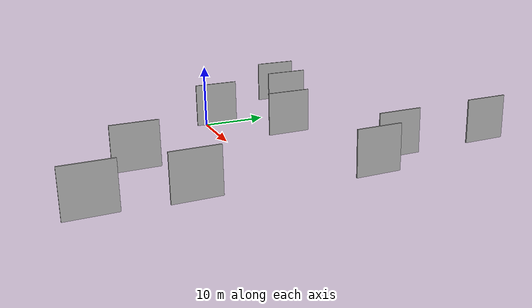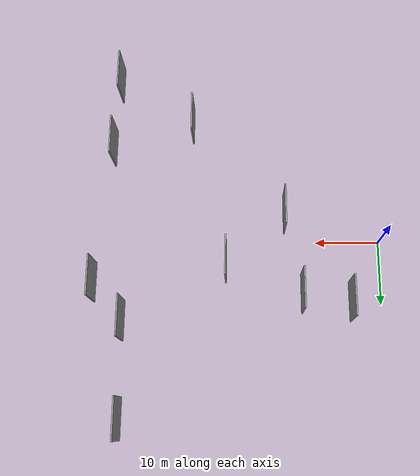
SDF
<sdf version="1.6">
 <world name="default">
  <scene>
   <sky><clouds><speed>12</speed></clouds></sky>
   <ambient>0.4 0.4 0.4 1</ambient>
   <background>0.7 0.7 0.7 1</background>
   <shadows>1</shadows>
  </scene>
  <gravity>0 0 -9.8066</gravity>
  <magnetic_field>6e-06 2.3e-05 -4.2e-05</magnetic_field>
  <physics default="0" name="default_physics" type="ode">
   <ode>
    <solver>
     <type>quick</type>
     <iters>10</iters>
     <sor>1.0</sor>
     <use_dynamic_moi_rescaling>0</use_dynamic_moi_rescaling>
    </solver>
    <constraints>
     <cfm>0</cfm>
     <erp>0.2</erp>
     <contact_max_correcting_vel>100</contact_max_correcting_vel>
     <contact_surface_layer>0.001</contact_surface_layer>
    </constraints>
   </ode>
   <max_step_size>0.004</max_step_size>
   <real_time_factor>1</real_time_factor>
   <real_time_update_rate>250</real_time_update_rate>
  </physics>
  <light name="sun" type="directional">
   <pose>0 0 10 0 0 0</pose>
   <diffuse>0.8 0.8 0.8 1</diffuse>
   <specular>0.2 0.2 0.2 1</specular>
   <attenuation>
    <range>1000</range>
    <constant>0.9</constant>
    <linear>0.01</linear>
    <quadratic>0.001</quadratic>
   </attenuation>
   <direction>-0.5 0.1 -0.9</direction>
  </light>
  <model name="grey_wall_1">
   <static>1</static>
   <pose>15.3532 -3.1420 5.0 0.000000 0.000000 1.570796</pose>
   <link name="link">
    <pose>0 0 3.00 0 0 0</pose>
    <collision name="collision"><geometry><box><size>6.00 0.2 6.00</size></box></geometry></collision>
    <visual name="visual">
     <cast_shadows>0</cast_shadows>
     <geometry><box><size>6.00 0.2 6.00</size></box></geometry>
     <material>
      <script>
       <uri>model://grey_wall/materials/scripts</uri>
       <uri>model://grey_wall/materials/textures</uri>
       <name>vrc/grey_wall</name>
      </script>
     </material>
    </visual>
   </link>
  </model>
  <model name="grey_wall_2">
   <static>1</static>
   <pose>39.1128 27.0847 5.0 0.000000 0.000000 1.570796</pose>
   <link name="link">
    <pose>0 0 3.00 0 0 0</pose>
    <collision name="collision"><geometry><box><size>6.00 0.2 6.00</size></box></geometry></collision>
    <visual name="visual">
     <cast_shadows>0</cast_shadows>
     <geometry><box><size>6.00 0.2 6.00</size></box></geometry>
     <material>
      <script>
       <uri>model://grey_wall/materials/scripts</uri>
       <uri>model://grey_wall/materials/textures</uri>
       <name>vrc/grey_wall</name>
      </script>
     </material>
    </visual>
   </link>
  </model>
  <model name="grey_wall_3">
   <static>1</static>
   <pose>29.4258 -18.1132 5.0 0.000000 0.000000 1.570796</pose>
   <link name="link">
    <pose>0 0 3.00 0 0 0</pose>
    <collision name="collision"><geometry><box><size>6.00 0.2 6.00</size></box></geometry></collision>
    <visual name="visual">
     <cast_shadows>0</cast_shadows>
     <geometry><box><size>6.00 0.2 6.00</size></box></geometry>
     <material>
      <script>
       <uri>model://grey_wall/materials/scripts</uri>
       <uri>model://grey_wall/materials/textures</uri>
       <name>vrc/grey_wall</name>
      </script>
     </material>
    </visual>
   </link>
  </model>
  <model name="grey_wall_4">
   <static>1</static>
   <pose>5.7561 10.3990 5.0 0.000000 0.000000 1.570796</pose>
   <link name="link">
    <pose>0 0 3.00 0 0 0</pose>
    <collision name="collision"><geometry><box><size>6.00 0.2 6.00</size></box></geometry></collision>
    <visual name="visual">
     <cast_shadows>0</cast_shadows>
     <geometry><box><size>6.00 0.2 6.00</size></box></geometry>
     <material>
      <script>
       <uri>model://grey_wall/materials/scripts</uri>
       <uri>model://grey_wall/materials/textures</uri>
       <name>vrc/grey_wall</name>
      </script>
     </material>
    </visual>
   </link>
  </model>
  <model name="grey_wall_5">
   <static>1</static>
   <pose>12.8872 9.2126 5.0 0.000000 0.000000 1.570796</pose>
   <link name="link">
    <pose>0 0 3.00 0 0 0</pose>
    <collision name="collision"><geometry><box><size>6.00 0.2 6.00</size></box></geometry></collision>
    <visual name="visual">
     <cast_shadows>0</cast_shadows>
     <geometry><box><size>6.00 0.2 6.00</size></box></geometry>
     <material>
      <script>
       <uri>model://grey_wall/materials/scripts</uri>
       <uri>model://grey_wall/materials/textures</uri>
       <name>vrc/grey_wall</name>
      </script>
     </material>
    </visual>
   </link>
  </model>
  <model name="grey_wall_6">
   <static>1</static>
   <pose>39.3017 13.1626 5.0 0.000000 0.000000 1.570796</pose>
   <link name="link">
    <pose>0 0 3.00 0 0 0</pose>
    <collision name="collision"><geometry><box><size>6.00 0.2 6.00</size></box></geometry></collision>
    <visual name="visual">
     <cast_shadows>0</cast_shadows>
     <geometry><box><size>6.00 0.2 6.00</size></box></geometry>
     <material>
      <script>
       <uri>model://grey_wall/materials/scripts</uri>
       <uri>model://grey_wall/materials/textures</uri>
       <name>vrc/grey_wall</name>
      </script>
     </material>
    </visual>
   </link>
  </model>
  <model name="grey_wall_7">
   <static>1</static>
   <pose>41.6786 -14.3228 5.0 0.000000 0.000000 1.570796</pose>
   <link name="link">
    <pose>0 0 3.00 0 0 0</pose>
    <collision name="collision"><geometry><box><size>6.00 0.2 6.00</size></box></geometry></collision>
    <visual name="visual">
     <cast_shadows>0</cast_shadows>
     <geometry><box><size>6.00 0.2 6.00</size></box></geometry>
     <material>
      <script>
       <uri>model://grey_wall/materials/scripts</uri>
       <uri>model://grey_wall/materials/textures</uri>
       <name>vrc/grey_wall</name>
      </script>
     </material>
    </visual>
   </link>
  </model>
  <model name="grey_wall_8">
   <static>1</static>
   <pose>40.9958 -25.4447 5.0 0.000000 0.000000 1.570796</pose>
   <link name="link">
    <pose>0 0 3.00 0 0 0</pose>
    <collision name="collision"><geometry><box><size>6.00 0.2 6.00</size></box></geometry></collision>
    <visual name="visual">
     <cast_shadows>0</cast_shadows>
     <geometry><box><size>6.00 0.2 6.00</size></box></geometry>
     <material>
      <script>
       <uri>model://grey_wall/materials/scripts</uri>
       <uri>model://grey_wall/materials/textures</uri>
       <name>vrc/grey_wall</name>
      </script>
     </material>
    </visual>
   </link>
  </model>
  <model name="grey_wall_9">
   <static>1</static>
   <pose>24.1945 4.5043 5.0 0.000000 0.000000 1.570796</pose>
   <link name="link">
    <pose>0 0 3.00 0 0 0</pose>
    <collision name="collision"><geometry><box><size>6.00 0.2 6.00</size></box></geometry></collision>
    <visual name="visual">
     <cast_shadows>0</cast_shadows>
     <geometry><box><size>6.00 0.2 6.00</size></box></geometry>
     <material>
      <script>
       <uri>model://grey_wall/materials/scripts</uri>
       <uri>model://grey_wall/materials/textures</uri>
       <name>vrc/grey_wall</name>
      </script>
     </material>
    </visual>
   </link>
  </model>
  <model name="grey_wall_10">
   <static>1</static>
   <pose>43.8048 7.3726 5.0 0.000000 0.000000 1.570796</pose>
   <link name="link">
    <pose>0 0 3.00 0 0 0</pose>
    <collision name="collision"><geometry><box><size>6.00 0.2 6.00</size></box></geometry></collision>
    <visual name="visual">
     <cast_shadows>0</cast_shadows>
     <geometry><box><size>6.00 0.2 6.00</size></box></geometry>
     <material>
      <script>
       <uri>model://grey_wall/materials/scripts</uri>
       <uri>model://grey_wall/materials/textures</uri>
       <name>vrc/grey_wall</name>
      </script>
     </material>
    </visual>
   </link>
  </model>
 </world>
</sdf>
